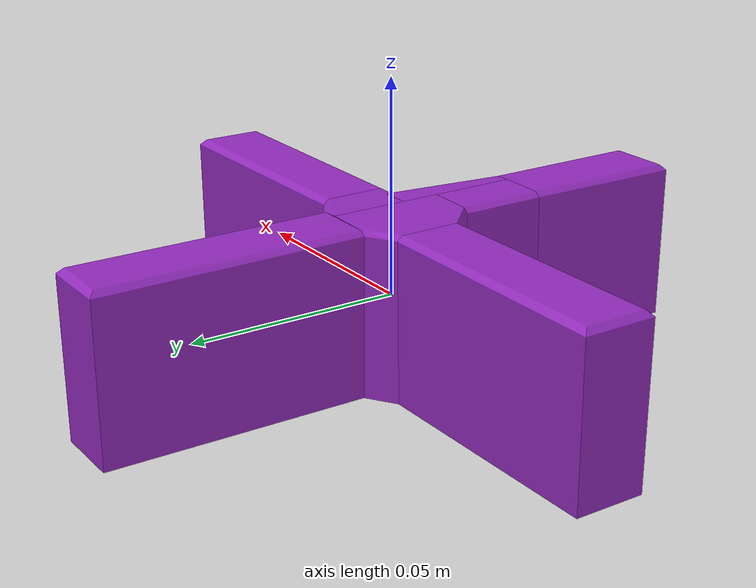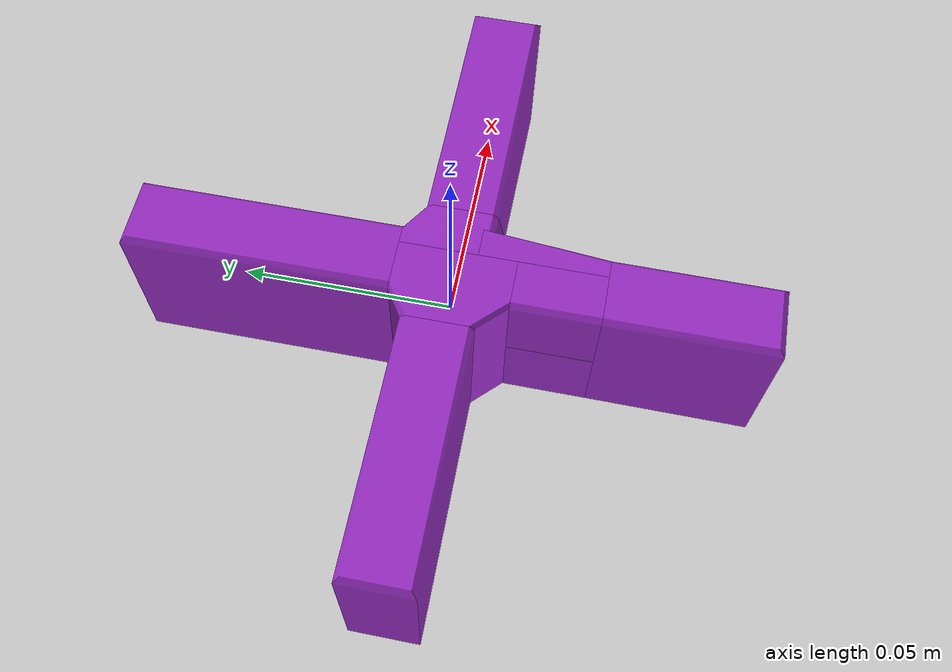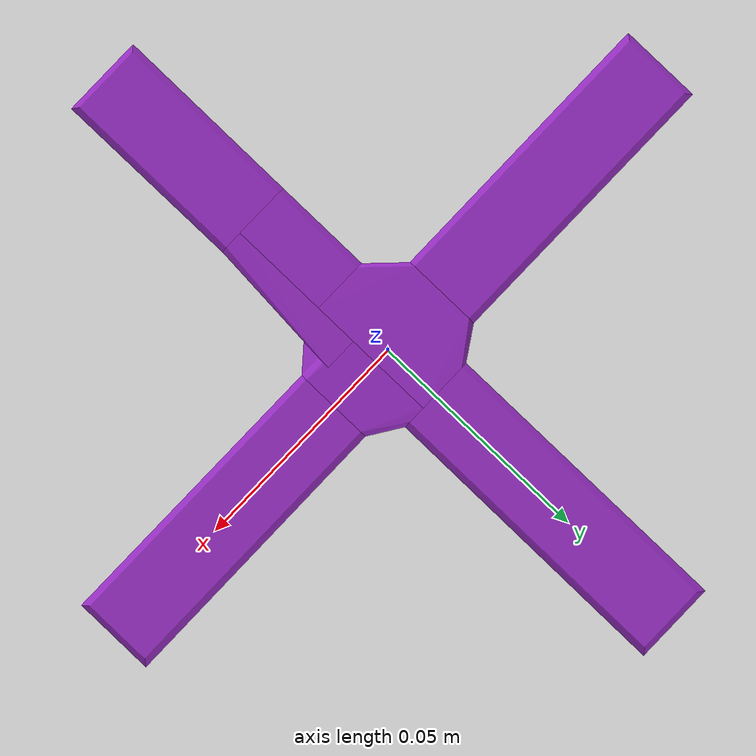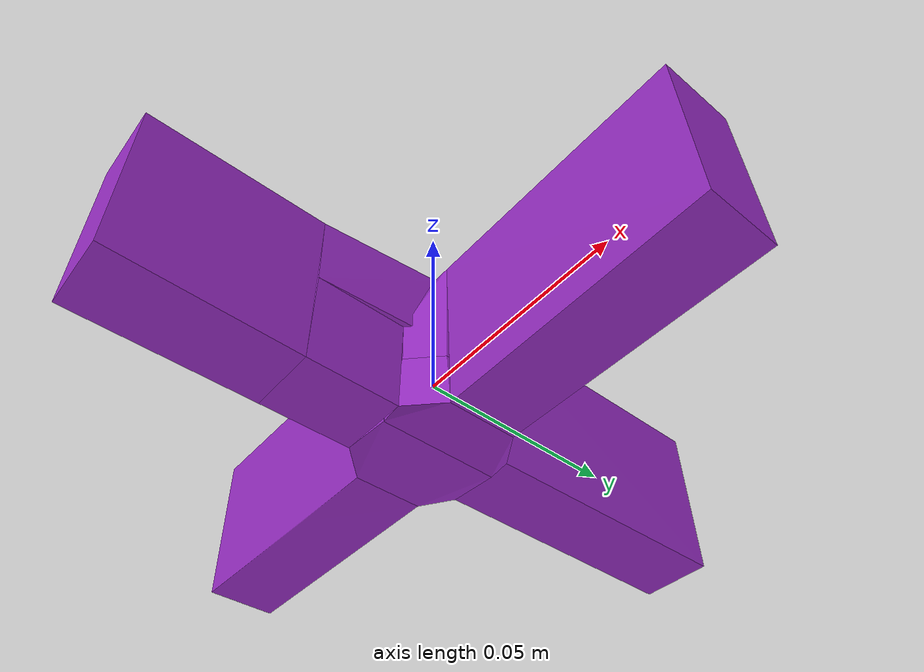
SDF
<?xml version='1.0' encoding='UTF-8'?>
<!-- This SDF was autogenerated by obj_to_drake_sdf.py -->
<sdf version="1.7">
  <model name="plus_centered">
    <link name="plus_centered">
      <inertial>
        <pose>0 0 0 0 0 0</pose>
        <mass>0.05</mass>
        <inertia>
          <ixx>3.0143847e-05</ixx>
          <iyy>2.7856814e-05</iyy>
          <izz>4.4922291e-05</izz>
          <ixy>1.1532673e-10</ixy>
          <ixz>1.3478516e-16</ixz>
          <iyz>-1.2583916e-16</iyz>
        </inertia>
      </inertial>
      <visual name="convex_0">
        <pose>0 0 0 0 0 0</pose>
        <geometry>
          <mesh>
            <uri>plus_centered_convex_0.obj</uri>
          </mesh>
        </geometry>
        <material>
          <diffuse>0.5882352941176471 0.17254901960784313 0.7607843137254902 1</diffuse>
        </material>
      </visual>
      <collision name="convex_0_volume">
        <pose>0 0 0 0 0 0</pose>
        <geometry>
          <mesh>
            <uri>plus_centered_convex_0.obj</uri>
          </mesh>
        </geometry>
        <drake:proximity_properties xmlns:drake="uri:drake">
          <drake:compliant_hydroelastic/>
          <drake:hydroelastic_modulus> 3.0e7 </drake:hydroelastic_modulus>
          <drake:mesh_resolution_hint> 0.02 </drake:mesh_resolution_hint>
          <drake:hunt_crossley_dissipation>10</drake:hunt_crossley_dissipation>
          <drake:mu_dynamic>0.3</drake:mu_dynamic>
        </drake:proximity_properties>
      </collision>
      <visual name="convex_1">
        <pose>0 0 0 0 0 0</pose>
        <geometry>
          <mesh>
            <uri>plus_centered_convex_1.obj</uri>
          </mesh>
        </geometry>
        <material>
          <diffuse>0.5882352941176471 0.17254901960784313 0.7607843137254902 1</diffuse>
        </material>
      </visual>
      <collision name="convex_1_volume">
        <pose>0 0 0 0 0 0</pose>
        <geometry>
          <mesh>
            <uri>plus_centered_convex_1.obj</uri>
          </mesh>
        </geometry>
        <drake:proximity_properties xmlns:drake="uri:drake">
          <drake:compliant_hydroelastic/>
          <drake:hydroelastic_modulus> 3.0e7 </drake:hydroelastic_modulus>
          <drake:mesh_resolution_hint> 0.02 </drake:mesh_resolution_hint>
          <drake:hunt_crossley_dissipation>10</drake:hunt_crossley_dissipation>
          <drake:mu_dynamic>0.3</drake:mu_dynamic>
        </drake:proximity_properties>
      </collision>
      <visual name="convex_2">
        <pose>0 0 0 0 0 0</pose>
        <geometry>
          <mesh>
            <uri>plus_centered_convex_2.obj</uri>
          </mesh>
        </geometry>
        <material>
          <diffuse>0.5882352941176471 0.17254901960784313 0.7607843137254902 1</diffuse>
        </material>
      </visual>
      <collision name="convex_2_volume">
        <pose>0 0 0 0 0 0</pose>
        <geometry>
          <mesh>
            <uri>plus_centered_convex_2.obj</uri>
          </mesh>
        </geometry>
        <drake:proximity_properties xmlns:drake="uri:drake">
          <drake:compliant_hydroelastic/>
          <drake:hydroelastic_modulus> 3.0e7 </drake:hydroelastic_modulus>
          <drake:mesh_resolution_hint> 0.02 </drake:mesh_resolution_hint>
          <drake:hunt_crossley_dissipation>10</drake:hunt_crossley_dissipation>
          <drake:mu_dynamic>0.3</drake:mu_dynamic>
        </drake:proximity_properties>
      </collision>
      <visual name="convex_3">
        <pose>0 0 0 0 0 0</pose>
        <geometry>
          <mesh>
            <uri>plus_centered_convex_3.obj</uri>
          </mesh>
        </geometry>
        <material>
          <diffuse>0.5882352941176471 0.17254901960784313 0.7607843137254902 1</diffuse>
        </material>
      </visual>
      <collision name="convex_3_volume">
        <pose>0 0 0 0 0 0</pose>
        <geometry>
          <mesh>
            <uri>plus_centered_convex_3.obj</uri>
          </mesh>
        </geometry>
        <drake:proximity_properties xmlns:drake="uri:drake">
          <drake:compliant_hydroelastic/>
          <drake:hydroelastic_modulus> 3.0e7 </drake:hydroelastic_modulus>
          <drake:mesh_resolution_hint> 0.02 </drake:mesh_resolution_hint>
          <drake:hunt_crossley_dissipation>10</drake:hunt_crossley_dissipation>
          <drake:mu_dynamic>0.3</drake:mu_dynamic>
        </drake:proximity_properties>
      </collision>
      <visual name="convex_4">
        <pose>0 0 0 0 0 0</pose>
        <geometry>
          <mesh>
            <uri>plus_centered_convex_4.obj</uri>
          </mesh>
        </geometry>
        <material>
          <diffuse>0.5882352941176471 0.17254901960784313 0.7607843137254902 1</diffuse>
        </material>
      </visual>
      <collision name="convex_4_volume">
        <pose>0 0 0 0 0 0</pose>
        <geometry>
          <mesh>
            <uri>plus_centered_convex_4.obj</uri>
          </mesh>
        </geometry>
        <drake:proximity_properties xmlns:drake="uri:drake">
          <drake:compliant_hydroelastic/>
          <drake:hydroelastic_modulus> 3.0e7 </drake:hydroelastic_modulus>
          <drake:mesh_resolution_hint> 0.02 </drake:mesh_resolution_hint>
          <drake:hunt_crossley_dissipation>10</drake:hunt_crossley_dissipation>
          <drake:mu_dynamic>0.3</drake:mu_dynamic>
        </drake:proximity_properties>
      </collision>
      <visual name="convex_5">
        <pose>0 0 0 0 0 0</pose>
        <geometry>
          <mesh>
            <uri>plus_centered_convex_5.obj</uri>
          </mesh>
        </geometry>
        <material>
          <diffuse>0.5882352941176471 0.17254901960784313 0.7607843137254902 1</diffuse>
        </material>
      </visual>
      <collision name="convex_5_volume">
        <pose>0 0 0 0 0 0</pose>
        <geometry>
          <mesh>
            <uri>plus_centered_convex_5.obj</uri>
          </mesh>
        </geometry>
        <drake:proximity_properties xmlns:drake="uri:drake">
          <drake:compliant_hydroelastic/>
          <drake:hydroelastic_modulus> 3.0e7 </drake:hydroelastic_modulus>
          <drake:mesh_resolution_hint> 0.02 </drake:mesh_resolution_hint>
          <drake:hunt_crossley_dissipation>10</drake:hunt_crossley_dissipation>
          <drake:mu_dynamic>0.3</drake:mu_dynamic>
        </drake:proximity_properties>
      </collision>
      <visual name="convex_6">
        <pose>0 0 0 0 0 0</pose>
        <geometry>
          <mesh>
            <uri>plus_centered_convex_6.obj</uri>
          </mesh>
        </geometry>
        <material>
          <diffuse>0.5882352941176471 0.17254901960784313 0.7607843137254902 1</diffuse>
        </material>
      </visual>
      <collision name="convex_6_volume">
        <pose>0 0 0 0 0 0</pose>
        <geometry>
          <mesh>
            <uri>plus_centered_convex_6.obj</uri>
          </mesh>
        </geometry>
        <drake:proximity_properties xmlns:drake="uri:drake">
          <drake:compliant_hydroelastic/>
          <drake:hydroelastic_modulus> 3.0e7 </drake:hydroelastic_modulus>
          <drake:mesh_resolution_hint> 0.02 </drake:mesh_resolution_hint>
          <drake:hunt_crossley_dissipation>10</drake:hunt_crossley_dissipation>
          <drake:mu_dynamic>0.3</drake:mu_dynamic>
        </drake:proximity_properties>
      </collision>
      <visual name="convex_7">
        <pose>0 0 0 0 0 0</pose>
        <geometry>
          <mesh>
            <uri>plus_centered_convex_7.obj</uri>
          </mesh>
        </geometry>
        <material>
          <diffuse>0.5882352941176471 0.17254901960784313 0.7607843137254902 1</diffuse>
        </material>
      </visual>
      <collision name="convex_7_volume">
        <pose>0 0 0 0 0 0</pose>
        <geometry>
          <mesh>
            <uri>plus_centered_convex_7.obj</uri>
          </mesh>
        </geometry>
        <drake:proximity_properties xmlns:drake="uri:drake">
          <drake:compliant_hydroelastic/>
          <drake:hydroelastic_modulus> 3.0e7 </drake:hydroelastic_modulus>
          <drake:mesh_resolution_hint> 0.02 </drake:mesh_resolution_hint>
          <drake:hunt_crossley_dissipation>10</drake:hunt_crossley_dissipation>
          <drake:mu_dynamic>0.3</drake:mu_dynamic>
        </drake:proximity_properties>
      </collision>
      <visual name="convex_8">
        <pose>0 0 0 0 0 0</pose>
        <geometry>
          <mesh>
            <uri>plus_centered_convex_8.obj</uri>
          </mesh>
        </geometry>
        <material>
          <diffuse>0.5882352941176471 0.17254901960784313 0.7607843137254902 1</diffuse>
        </material>
      </visual>
      <collision name="convex_8_volume">
        <pose>0 0 0 0 0 0</pose>
        <geometry>
          <mesh>
            <uri>plus_centered_convex_8.obj</uri>
          </mesh>
        </geometry>
        <drake:proximity_properties xmlns:drake="uri:drake">
          <drake:compliant_hydroelastic/>
          <drake:hydroelastic_modulus> 3.0e7 </drake:hydroelastic_modulus>
          <drake:mesh_resolution_hint> 0.02 </drake:mesh_resolution_hint>
          <drake:hunt_crossley_dissipation>10</drake:hunt_crossley_dissipation>
          <drake:mu_dynamic>0.3</drake:mu_dynamic>
        </drake:proximity_properties>
      </collision>
      <visual name="convex_9">
        <pose>0 0 0 0 0 0</pose>
        <geometry>
          <mesh>
            <uri>plus_centered_convex_9.obj</uri>
          </mesh>
        </geometry>
        <material>
          <diffuse>0.5882352941176471 0.17254901960784313 0.7607843137254902 1</diffuse>
        </material>
      </visual>
      <collision name="convex_9_volume">
        <pose>0 0 0 0 0 0</pose>
        <geometry>
          <mesh>
            <uri>plus_centered_convex_9.obj</uri>
          </mesh>
        </geometry>
        <drake:proximity_properties xmlns:drake="uri:drake">
          <drake:compliant_hydroelastic/>
          <drake:hydroelastic_modulus> 3.0e7 </drake:hydroelastic_modulus>
          <drake:mesh_resolution_hint> 0.02 </drake:mesh_resolution_hint>
          <drake:hunt_crossley_dissipation>10</drake:hunt_crossley_dissipation>
          <drake:mu_dynamic>0.3</drake:mu_dynamic>
        </drake:proximity_properties>
      </collision>
    </link>
  </model>
</sdf>
